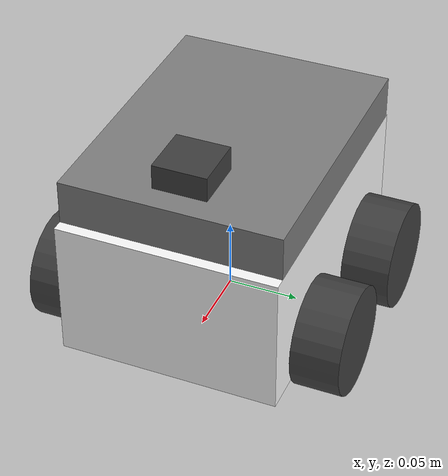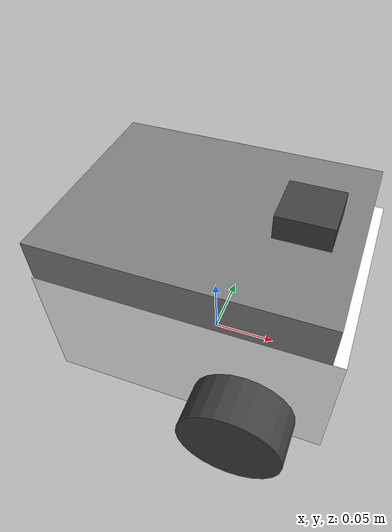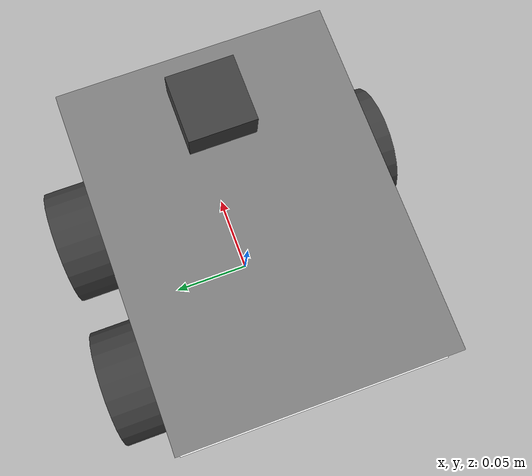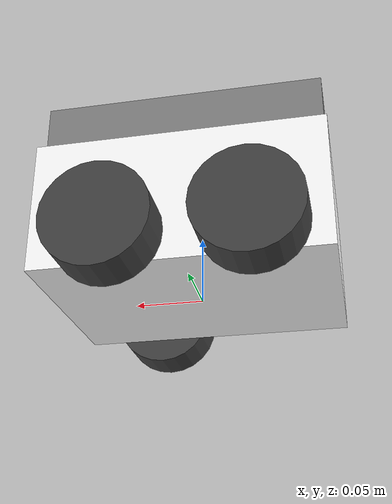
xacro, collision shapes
<?xml version="1.0" encoding="utf-8"?>
<robot name="akros2_omni" xmlns:xacro="http://ros.org/wiki/xacro">
<xacro:include filename="$(find akros2_description)/urdf/akros2_omni/akros2_omni.common.xacro"/>
<xacro:include filename="$(find akros2_description)/urdf/akros2_omni/akros2_omni.control.xacro"/>
<xacro:include filename="$(find akros2_description)/urdf/akros2_omni/akros2_omni.gazebo.xacro"/>

<xacro:arg name="mesh_path" default="package://akros2_description/meshes/akros2_omni/" /> <!-- HTTPS URL also works here -->
<xacro:arg name="unity" default="false" />
<xacro:property name="mesh_path" value="$(arg mesh_path)" />

<xacro:if value="$(arg unity)">
  <xacro:property name="mesh_path" value="" />
</xacro:if>

<!-- **** LINKS **** -->

<!-- BASE_LINK -->
<link name="base_link">
  <visual>
    <origin xyz="0 0 0" rpy="0 0 0" />
    <geometry>
      <mesh filename="${mesh_path}base_module.dae" />
    </geometry>
   <material name="White"/>
  </visual>
  <collision>
    <origin xyz="${base_offset_x} 0 ${base_height/2}" rpy="0 0 0" /> <!-- If needed: offset from ground = 0.0278 -->
    <geometry>
      <box size="${base_length} ${base_width} ${base_height}"/>
    </geometry>
  </collision>
</link>

<!-- BASE_LINK_INERTIAL (WORKAROUND FOR KDL WHICH DOES NOT ACCEPT BASE_LINK WITH INERTIA) -->
<link name="base_link_inertial">
  <inertial>
    <origin xyz="0 0 0" rpy="0 0 0" />
    <mass value="${base_mass}"/>
    <xacro:box_inertia m="${base_mass}" x="${base_length}" y="${base_width}" z="${base_height}"/>
  </inertial>
</link>

<!-- BASE_FOOTPRINT -->
<link name="base_footprint"/>

<!-- NAV_LINK -->
<link name="nav_link">
  <inertial>
    <mass value="${nav_mass}" />
    <xacro:box_inertia m="${nav_mass}" x="${nav_length}" y="${nav_width}" z="${nav_height}"/>
  </inertial>
  <visual>
    <origin xyz="0 0 -0.099" rpy="0 0 0" />
    <geometry>
      <mesh filename="${mesh_path}navigation_module.dae" />
    </geometry>
    <material name="DarkGrey"/>
  </visual>
  <collision>
    <origin xyz="0 0 ${nav_height/2}" rpy="0 0 0" /> <!-- If needed: offset from base_link = -0.099 -->
    <geometry>
      <box size="${nav_length} ${nav_width} ${nav_height}"/>
    </geometry>
  </collision>
</link>

<!-- LD06 LASER_LINK -->
<link name="laser_link">
  <inertial>
    <origin xyz="0 0 0" rpy="0 0 0" />
    <mass value="${laser_mass}" />
    <xacro:box_inertia m="${laser_mass}" x="${laser_length}" y="${laser_width}" z="${laser_height}"/>
  </inertial>
  <visual>
    <origin xyz="0 0 0" rpy="0 0 ${minus_pi_by_two}" />
    <geometry>
      <mesh filename="${mesh_path}ld06.dae" />
    </geometry>
    <material name="FlatBlack"/>
  </visual>
  <collision>
    <origin xyz="0 0 ${laser_height/2}" rpy="0 0 ${minus_pi_by_two}" />
    <geometry>
      <box size="${laser_length} ${laser_width} ${laser_height}"/>
    </geometry>
  </collision>
</link>

<!-- LASER_FRAME -->
<link name="laser_frame"/>

<!-- MPU9250 IMU_LINK -->
<link name="imu_link"/>

<!-- IMU_FRAME -->
<link name="imu_frame"/>

<!-- WHEEL FRONT -->
<link name="wheel_f">
  <inertial>
    <mass value="${wheel_mass}"/>
    <xacro:cylinder_inertia m="${wheel_mass}" r="${wheel_radius}" h="${wheel_height}"/>
  </inertial>
  <visual>
    <origin xyz="0 0 0" rpy="0 0 0" />
    <geometry>
      <mesh filename="${mesh_path}wheel_f.dae" />
    </geometry>
    <material name="FlatBlack"/>
  </visual>
  <collision>
    <origin xyz="0 ${wheel_height/2} 0" rpy="${pi_by_two} 0 0" /><!-- If needed: offset from joint = 0.01 -->
    <geometry>
      <cylinder length="${wheel_height}" radius="${wheel_radius}"/>
    </geometry>
  </collision>
</link>

<!-- WHEEL LEFT (BACK) -->
<link name="wheel_l">
  <inertial>
    <mass value="${wheel_mass}"/>
    <xacro:cylinder_inertia m="${wheel_mass}" r="${wheel_radius}" h="${wheel_height}"/>
  </inertial>
  <visual>
    <origin xyz="0 0 0" rpy="0 0 0" />
    <geometry>
      <mesh filename="${mesh_path}wheel_l.dae" />
    </geometry>
    <material name="FlatBlack"/>
  </visual>
  <collision>
    <origin xyz="0 ${wheel_height/2} 0" rpy="${pi_by_two} 0 0" /><!-- If needed: offset from joint = 0.01 -->
    <geometry>
      <cylinder length="${wheel_height}" radius="${wheel_radius}"/>
    </geometry>
  </collision>
</link>

<!-- WHEEL RIGHT (BACK) -->
<link name="wheel_r">
  <inertial>
    <mass value="${wheel_mass}"/>
    <xacro:cylinder_inertia m="${wheel_mass}" r="${wheel_radius}" h="${wheel_height}"/>
  </inertial>
  <visual>
    <origin xyz="0 0 0" rpy="0 0 0" />
    <geometry>
      <mesh filename="${mesh_path}wheel_r.dae" />
    </geometry>
    <material name="FlatBlack"/>
  </visual>
  <collision>
    <origin xyz="0 ${-1*(wheel_height/2)} 0" rpy="${pi_by_two} 0 0" /><!-- If needed: offset from joint = 0.01 -->
    <geometry>
      <cylinder length="${wheel_height}" radius="${wheel_radius}"/>
    </geometry>
  </collision>
</link>

<!-- **** JOINTS **** -->

<!-- BASE_LINK_INERTIAL TO BASE_LINK -->
<joint name="base_inertial_fixed" type="fixed">
  <parent link="base_link"/>
  <child link="base_link_inertial"/>
  <origin xyz="0 0 0"/>
</joint>

<!-- BASE_FOOTPRINT TO BASE_LINK -->
<joint name="base_footprint_fixed" type="fixed">
  <parent link="base_link"/>
  <child link="base_footprint"/>
  <origin xyz="0 0 0"/>
</joint>

<!-- NAV_LINK TO BASE_LINK -->
<joint name="base_nav_fixed" type="fixed">
  <parent link="base_link"/>
  <child link="nav_link"/>
  <origin xyz="0 0 ${base_height}"/>
  <axis xyz="0 0 0"/>
</joint>

<!-- LASER_LINK TO NAV_LINK -->
<joint name="nav_laser_fixed" type="fixed">
  <parent link="nav_link"/>
  <child link="laser_link"/>
  <origin xyz="${nav_laser_offset_x} 0 ${nav_height/2}"/>
</joint>

<!-- LASER_FRAME TO LASER_LINK -->
<joint name="laser_frame_fixed" type="fixed">
  <parent link="laser_link"/>
  <child link="laser_frame"/>
  <origin xyz="0 0 ${laser_frame_offset_z}"/>
</joint>

<!-- IMU_LINK TO BASE_LINK -->
<joint name="imu_base_fixed" type="fixed">
  <parent link="base_link"/>
  <child link="imu_link"/>
  <origin xyz="0 0 0"/>
</joint>

<!-- IMU_FRAME TO IMU_LINK -->
<joint name="imu_frame_fixed" type="fixed">
  <parent link="imu_link"/>
  <child link="imu_frame"/>
  <origin xyz="0 0 0"/>
</joint>

<!-- WHEEL_F TO BASE_LINK -->
<joint name="joint_f" type="continuous">
  <parent link="base_link" />
  <child link="wheel_f" />
  <origin xyz="${joint_offset_x} ${joint_offset_y} ${joint_offset_z}" rpy="0 0 0" />
  <axis xyz="0 1 0" />
</joint>

<!-- WHEEL_L (BACK) TO BASE_LINK -->
<joint name="joint_l" type="continuous">
  <parent link="base_link" />
  <child link="wheel_l" />
  <origin xyz="${-1*joint_offset_x} ${joint_offset_y} ${joint_offset_z}" rpy="0 0 0" />
  <axis xyz="0 1 0" />
</joint>

<!-- WHEEL_R (BACK) TO BASE_LINK -->
<joint name="joint_r" type="continuous">
  <parent link="base_link" />
  <child link="wheel_r" />
  <origin xyz="${joint_offset_x} ${-1*joint_offset_y} ${joint_offset_z}" rpy="0 0 0" />
  <axis xyz="0 1 0" />
</joint>

</robot>

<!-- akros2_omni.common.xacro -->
<robot name="omni_common" xmlns:xacro="http://ros.org/wiki/xacro">

<xacro:property name="pi_by_two" value="1.5707963" />
<xacro:property name="minus_pi_by_two" value="-1.5707963" />

<xacro:property name="base_mass" value="2.0" /> <!-- Guesstimate, needs to be measured -->
<xacro:property name="base_length" value="0.210" />
<xacro:property name="base_width" value="0.154" /> <!-- Change 0.154 to 0.174 to include motor shafts and emergency button. NB: Geometry intersects wheels -->
<xacro:property name="base_height" value="0.099" />
<xacro:property name="base_offset_x" value="0.003" />

<xacro:property name="nav_mass" value="0.5" /> <!-- Guesstimate, needs to be measured -->
<xacro:property name="nav_length" value="0.2" />
<xacro:property name="nav_width" value="0.154" />
<xacro:property name="nav_height" value="0.031" />

<xacro:property name="laser_mass" value="0.12" />
<xacro:property name="laser_length" value="0.038" />
<xacro:property name="laser_width" value="0.0381" />
<xacro:property name="laser_height" value="0.033" />

<xacro:property name="wheel_radius" value="0.038" />
<xacro:property name="wheel_mass" value="0.075" />
<xacro:property name="wheel_height" value="0.034" />

<xacro:property name="nav_laser_offset_x" value="0.0632" />
<xacro:property name="laser_frame_offset_z" value="0.0255" />

<xacro:property name="joint_offset_x" value="0.0495" />
<xacro:property name="joint_offset_y" value="0.078" />
<xacro:property name="joint_offset_z" value="0.021" />

<xacro:macro name="cylinder_inertia" params="m r h">
  <inertia  ixx="${m*(3*r*r+h*h)/12}" ixy = "0" ixz = "0"
            iyy="${m*(3*r*r+h*h)/12}" iyz = "0"
            izz="${m*r*r/2}" />
</xacro:macro>

<xacro:macro name="box_inertia" params="m x y z">
  <inertia  ixx="${m*(y*y+z*z)/12}" ixy = "0" ixz = "0"
            iyy="${m*(x*x+z*z)/12}" iyz = "0"
            izz="${m*(x*x+z*z)/12}" />
</xacro:macro>

<xacro:macro name="sphere_inertia" params="m r">
  <inertia  ixx="${2*m*r*r/5}" ixy = "0" ixz = "0"
            iyy="${2*m*r*r/5}" iyz = "0"
            izz="${2*m*r*r/5}" />
</xacro:macro>

<material name="FlatBlack">
    <color rgba="0.25 0.25 0.25 1"/>
</material>

<material name="DarkGrey">
    <color rgba="0.5 0.5 0.5 1"/>
</material>

<material name="Grey">
    <color rgba="0.75 0.75 0.75 1"/>
</material>

<material name="White">
     <color rgba="1 1 1 1"/>
</material>

</robot>
